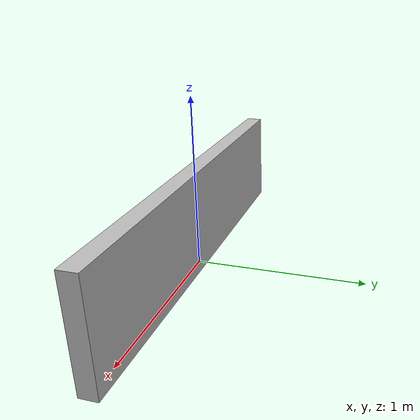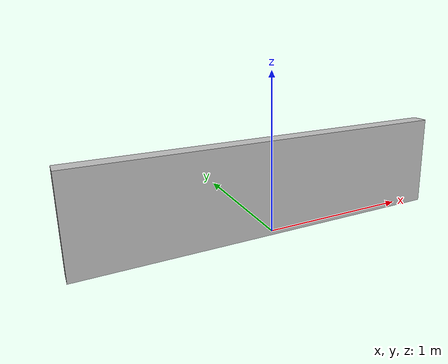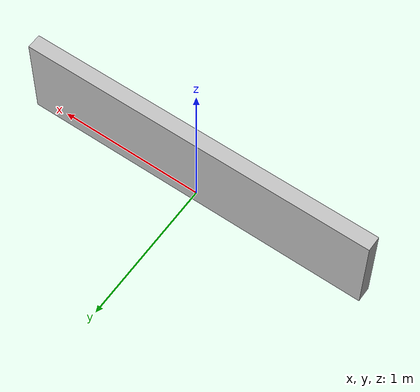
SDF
<?xml version="1.0"?>
<sdf version="1.6">
  <model name="rwc2017/wall_240">
    <link name="1_link">
      <collision name="1_col">
        <geometry>
          <box>
            <size>2.4 0.1 0.6</size>
          </box>
        </geometry>
      </collision>
      <visual name="1_vis">
        <geometry>
          <box>
            <size>2.4 0.1 0.6</size>
          </box>
        </geometry>
        <material>
          <ambient>0.75 0.75 0.75 1</ambient>
        </material>
      </visual>
      <pose>0 0 0.3 0 0 0</pose>
    </link>
    <static>true</static>
  </model>
</sdf>
